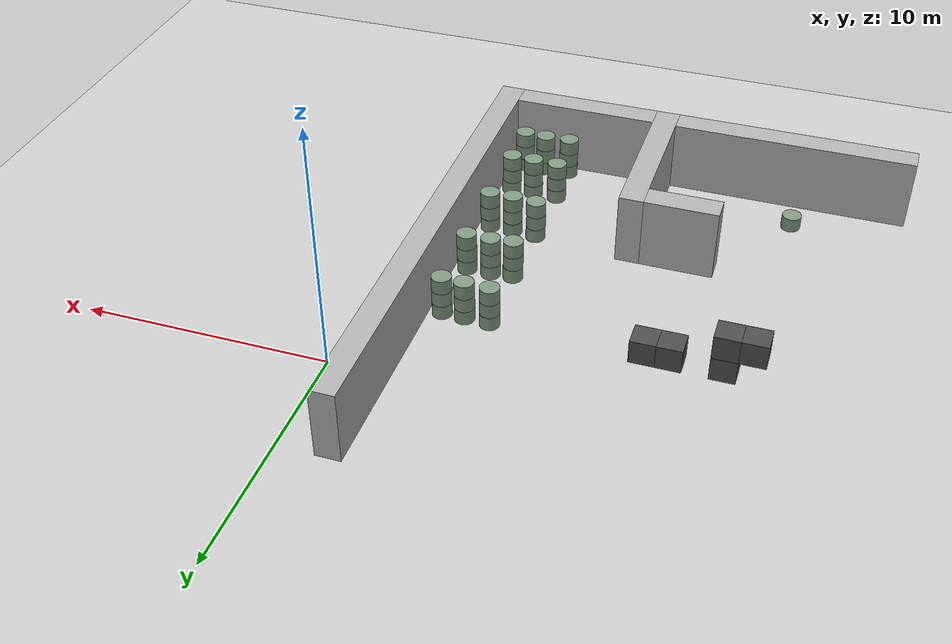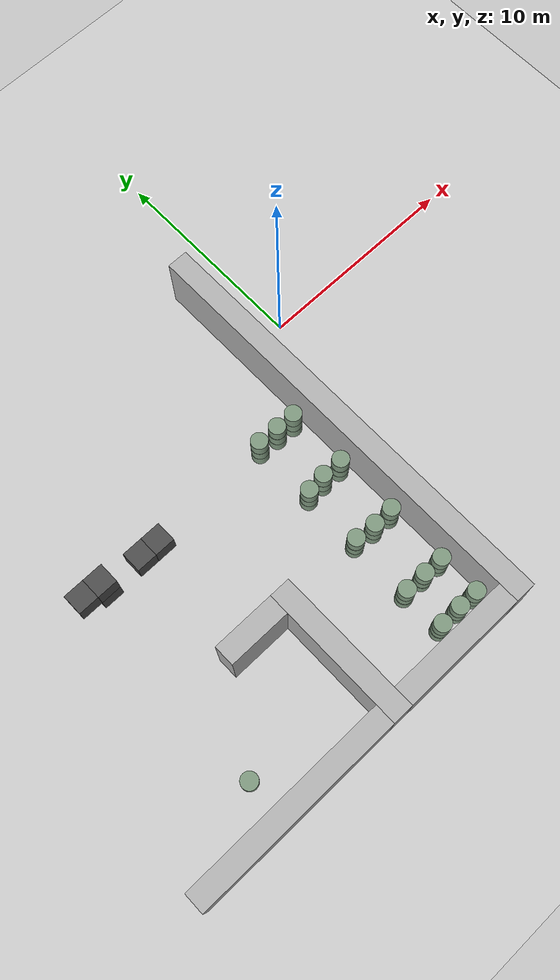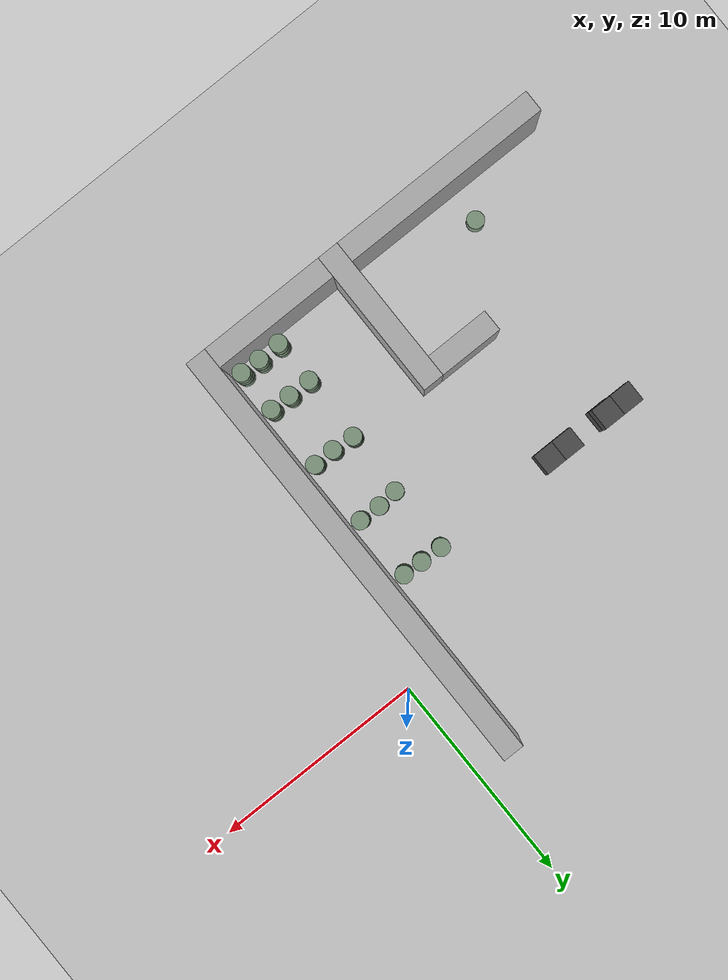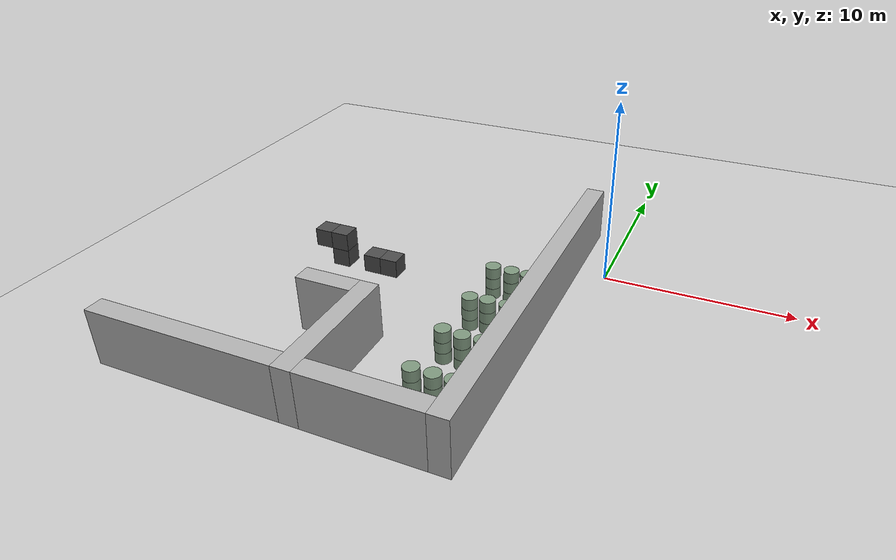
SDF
<sdf version="1.6">
 <world name="default">
  <include><uri>model://ground_plane</uri></include>
  <model name="wall_2">
   <pose>-9.0 -13.0 1.5 0 -0 0</pose>
   <static>True</static>
   <link name="link">
    <inertial>
     <mass>100</mass>
     <inertia>
      <ixx>0.166667</ixx>
      <ixy>0</ixy>
      <ixz>0</ixz>
      <iyy>0.166667</iyy>
      <iyz>0</iyz>
      <izz>0.166667</izz>
     </inertia>
    </inertial>
    <collision name="collision"><geometry><box><size>1.0 7.0 3.0</size></box></geometry></collision>
    <visual name="visual">
     <geometry><box><size>1.0 7.0 3.0</size></box></geometry>
     <material><ambient>0.7 0.7 0.7 1</ambient><diffuse>0.7 0.7 0.7 1</diffuse></material>
    </visual>
   </link>
  </model>
  <model name="wall_4">
   <pose>-2.0 -6.0 1.5 0 -0 0</pose>
   <static>True</static>
   <link name="link">
    <inertial>
     <mass>100</mass>
     <inertia>
      <ixx>0.166667</ixx>
      <ixy>0</ixy>
      <ixz>0</ixz>
      <iyy>0.166667</iyy>
      <iyz>0</iyz>
      <izz>0.166667</izz>
     </inertia>
    </inertial>
    <collision name="collision"><geometry><box><size>1.0 21.0 3.0</size></box></geometry></collision>
    <visual name="visual">
     <geometry><box><size>1.0 21.0 3.0</size></box></geometry>
     <material><ambient>0.7 0.7 0.7 1</ambient><diffuse>0.7 0.7 0.7 1</diffuse></material>
    </visual>
   </link>
  </model>
  <model name="wall_5">
   <pose>-14.5 -16.0 1.5 0 -0 0</pose>
   <static>True</static>
   <link name="link">
    <inertial>
     <mass>100</mass>
     <inertia>
      <ixx>0.166667</ixx>
      <ixy>0</ixy>
      <ixz>0</ixz>
      <iyy>0.166667</iyy>
      <iyz>0</iyz>
      <izz>0.166667</izz>
     </inertia>
    </inertial>
    <collision name="collision"><geometry><box><size>10.0 1.0 3.0</size></box></geometry></collision>
    <visual name="visual">
     <geometry><box><size>10.0 1.0 3.0</size></box></geometry>
     <material><ambient>0.7 0.7 0.7 1</ambient><diffuse>0.7 0.7 0.7 1</diffuse></material>
    </visual>
   </link>
  </model>
  <model name="wall_6">
   <pose>-5.5 -16.0 1.5 0 -0 0</pose>
   <static>True</static>
   <link name="link">
    <inertial>
     <mass>100</mass>
     <inertia>
      <ixx>0.166667</ixx>
      <ixy>0</ixy>
      <ixz>0</ixz>
      <iyy>0.166667</iyy>
      <iyz>0</iyz>
      <izz>0.166667</izz>
     </inertia>
    </inertial>
    <collision name="collision"><geometry><box><size>6.0 1.0 3.0</size></box></geometry></collision>
    <visual name="visual">
     <geometry><box><size>6.0 1.0 3.0</size></box></geometry>
     <material><ambient>0.7 0.7 0.7 1</ambient><diffuse>0.7 0.7 0.7 1</diffuse></material>
    </visual>
   </link>
  </model>
  <model name="wall_8">
   <pose>-11.0 -10.0 1.5 0 -0 0</pose>
   <static>True</static>
   <link name="link">
    <inertial>
     <mass>100</mass>
     <inertia>
      <ixx>0.166667</ixx>
      <ixy>0</ixy>
      <ixz>0</ixz>
      <iyy>0.166667</iyy>
      <iyz>0</iyz>
      <izz>0.166667</izz>
     </inertia>
    </inertial>
    <collision name="collision"><geometry><box><size>3.0 1.0 3.0</size></box></geometry></collision>
    <visual name="visual">
     <geometry><box><size>3.0 1.0 3.0</size></box></geometry>
     <material><ambient>0.7 0.7 0.7 1</ambient><diffuse>0.7 0.7 0.7 1</diffuse></material>
    </visual>
   </link>
  </model>
  <model name="unit_box_31">
   <pose>-15.0 -4.0 1.5 0 -0 0</pose>
   <static>True</static>
   <link name="link">
    <inertial>
     <mass>100</mass>
     <inertia>
      <ixx>0.166667</ixx>
      <ixy>0</ixy>
      <ixz>0</ixz>
      <iyy>0.166667</iyy>
      <iyz>0</iyz>
      <izz>0.166667</izz>
     </inertia>
    </inertial>
    <collision name="collision"><geometry><box><size>1.0 1.0 1.0</size></box></geometry></collision>
    <visual name="visual">
     <geometry><box><size>1.0 1.0 1.0</size></box></geometry>
     <material><ambient>0.3 0.3 0.3 1</ambient><diffuse>0.3 0.3 0.3 1</diffuse></material>
    </visual>
   </link>
  </model>
  <model name="unit_box_40">
   <pose>-14.0 -4.0 0.5 0 -0 0</pose>
   <static>True</static>
   <link name="link">
    <inertial>
     <mass>100</mass>
     <inertia>
      <ixx>0.166667</ixx>
      <ixy>0</ixy>
      <ixz>0</ixz>
      <iyy>0.166667</iyy>
      <iyz>0</iyz>
      <izz>0.166667</izz>
     </inertia>
    </inertial>
    <collision name="collision"><geometry><box><size>1.0 1.0 1.0</size></box></geometry></collision>
    <visual name="visual">
     <geometry><box><size>1.0 1.0 1.0</size></box></geometry>
     <material><ambient>0.3 0.3 0.3 1</ambient><diffuse>0.3 0.3 0.3 1</diffuse></material>
    </visual>
   </link>
  </model>
  <model name="unit_box_41">
   <pose>-14.0 -4.0 1.5 0 -0 0</pose>
   <static>True</static>
   <link name="link">
    <inertial>
     <mass>100</mass>
     <inertia>
      <ixx>0.166667</ixx>
      <ixy>0</ixy>
      <ixz>0</ixz>
      <iyy>0.166667</iyy>
      <iyz>0</iyz>
      <izz>0.166667</izz>
     </inertia>
    </inertial>
    <collision name="collision"><geometry><box><size>1.0 1.0 1.0</size></box></geometry></collision>
    <visual name="visual">
     <geometry><box><size>1.0 1.0 1.0</size></box></geometry>
     <material><ambient>0.3 0.3 0.3 1</ambient><diffuse>0.3 0.3 0.3 1</diffuse></material>
    </visual>
   </link>
  </model>
  <model name="unit_box_50">
   <pose>-12.0 -4.0 0.5 0 -0 0</pose>
   <static>True</static>
   <link name="link">
    <inertial>
     <mass>100</mass>
     <inertia>
      <ixx>0.166667</ixx>
      <ixy>0</ixy>
      <ixz>0</ixz>
      <iyy>0.166667</iyy>
      <iyz>0</iyz>
      <izz>0.166667</izz>
     </inertia>
    </inertial>
    <collision name="collision"><geometry><box><size>1.0 1.0 1.0</size></box></geometry></collision>
    <visual name="visual">
     <geometry><box><size>1.0 1.0 1.0</size></box></geometry>
     <material><ambient>0.3 0.3 0.3 1</ambient><diffuse>0.3 0.3 0.3 1</diffuse></material>
    </visual>
   </link>
  </model>
  <model name="unit_box_55">
   <pose>-11.0 -4.0 0.5 0 -0 0</pose>
   <static>True</static>
   <link name="link">
    <inertial>
     <mass>100</mass>
     <inertia>
      <ixx>0.166667</ixx>
      <ixy>0</ixy>
      <ixz>0</ixz>
      <iyy>0.166667</iyy>
      <iyz>0</iyz>
      <izz>0.166667</izz>
     </inertia>
    </inertial>
    <collision name="collision"><geometry><box><size>1.0 1.0 1.0</size></box></geometry></collision>
    <visual name="visual">
     <geometry><box><size>1.0 1.0 1.0</size></box></geometry>
     <material><ambient>0.3 0.3 0.3 1</ambient><diffuse>0.3 0.3 0.3 1</diffuse></material>
    </visual>
   </link>
  </model>
  <model name="unit_cylinder_40">
   <pose>-14.9763541599 -14.0039779979 0.3 0 -0 0</pose>
   <static>True</static>
   <link name="link">
    <inertial>
     <mass>100</mass>
     <inertia><ixx>0.145833</ixx><ixy>0</ixy><ixz>0</ixz><iyy>0.145833</iyy><iyz>0</iyz><izz>0.125</izz></inertia>
    </inertial>
    <collision name="collision">
     <geometry><cylinder><radius>0.4</radius><length>0.6</length></cylinder></geometry>
     <max_contacts>100</max_contacts>
    </collision>
    <visual name="visual">
     <geometry><cylinder><radius>0.4</radius><length>0.6</length></cylinder></geometry>
     <material><ambient>0.5 0.6 0.5 1</ambient><diffuse>0.5 0.6 0.5 1</diffuse></material>
    </visual>
   </link>
  </model>
  <model name="unit_cylinder_54">
   <pose>-5.00921092306 -14.9922750467 0.3 0 -0 0</pose>
   <static>True</static>
   <link name="link">
    <inertial>
     <mass>100</mass>
     <inertia><ixx>0.145833</ixx><ixy>0</ixy><ixz>0</ixz><iyy>0.145833</iyy><iyz>0</iyz><izz>0.125</izz></inertia>
    </inertial>
    <collision name="collision">
     <geometry><cylinder><radius>0.4</radius><length>0.6</length></cylinder></geometry>
     <max_contacts>100</max_contacts>
    </collision>
    <visual name="visual">
     <geometry><cylinder><radius>0.4</radius><length>0.6</length></cylinder></geometry>
     <material><ambient>0.5 0.6 0.5 1</ambient><diffuse>0.5 0.6 0.5 1</diffuse></material>
    </visual>
   </link>
  </model>
  <model name="unit_cylinder_55">
   <pose>-4.99778310944 -14.9755416685 0.9 0 -0 0</pose>
   <static>True</static>
   <link name="link">
    <inertial>
     <mass>100</mass>
     <inertia><ixx>0.145833</ixx><ixy>0</ixy><ixz>0</ixz><iyy>0.145833</iyy><iyz>0</iyz><izz>0.125</izz></inertia>
    </inertial>
    <collision name="collision">
     <geometry><cylinder><radius>0.4</radius><length>0.6</length></cylinder></geometry>
     <max_contacts>100</max_contacts>
    </collision>
    <visual name="visual">
     <geometry><cylinder><radius>0.4</radius><length>0.6</length></cylinder></geometry>
     <material><ambient>0.5 0.6 0.5 1</ambient><diffuse>0.5 0.6 0.5 1</diffuse></material>
    </visual>
   </link>
  </model>
  <model name="unit_cylinder_56">
   <pose>-5.00950720244 -14.9846965916 1.5 0 -0 0</pose>
   <static>True</static>
   <link name="link">
    <inertial>
     <mass>100</mass>
     <inertia><ixx>0.145833</ixx><ixy>0</ixy><ixz>0</ixz><iyy>0.145833</iyy><iyz>0</iyz><izz>0.125</izz></inertia>
    </inertial>
    <collision name="collision">
     <geometry><cylinder><radius>0.4</radius><length>0.6</length></cylinder></geometry>
     <max_contacts>100</max_contacts>
    </collision>
    <visual name="visual">
     <geometry><cylinder><radius>0.4</radius><length>0.6</length></cylinder></geometry>
     <material><ambient>0.5 0.6 0.5 1</ambient><diffuse>0.5 0.6 0.5 1</diffuse></material>
    </visual>
   </link>
  </model>
  <model name="unit_cylinder_57">
   <pose>-5.04824495338 -12.969737944 0.3 0 -0 0</pose>
   <static>True</static>
   <link name="link">
    <inertial>
     <mass>100</mass>
     <inertia><ixx>0.145833</ixx><ixy>0</ixy><ixz>0</ixz><iyy>0.145833</iyy><iyz>0</iyz><izz>0.125</izz></inertia>
    </inertial>
    <collision name="collision">
     <geometry><cylinder><radius>0.4</radius><length>0.6</length></cylinder></geometry>
     <max_contacts>100</max_contacts>
    </collision>
    <visual name="visual">
     <geometry><cylinder><radius>0.4</radius><length>0.6</length></cylinder></geometry>
     <material><ambient>0.5 0.6 0.5 1</ambient><diffuse>0.5 0.6 0.5 1</diffuse></material>
    </visual>
   </link>
  </model>
  <model name="unit_cylinder_58">
   <pose>-5.03633777549 -12.9618991564 0.9 0 -0 0</pose>
   <static>True</static>
   <link name="link">
    <inertial>
     <mass>100</mass>
     <inertia><ixx>0.145833</ixx><ixy>0</ixy><ixz>0</ixz><iyy>0.145833</iyy><iyz>0</iyz><izz>0.125</izz></inertia>
    </inertial>
    <collision name="collision">
     <geometry><cylinder><radius>0.4</radius><length>0.6</length></cylinder></geometry>
     <max_contacts>100</max_contacts>
    </collision>
    <visual name="visual">
     <geometry><cylinder><radius>0.4</radius><length>0.6</length></cylinder></geometry>
     <material><ambient>0.5 0.6 0.5 1</ambient><diffuse>0.5 0.6 0.5 1</diffuse></material>
    </visual>
   </link>
  </model>
  <model name="unit_cylinder_59">
   <pose>-5.04140824016 -12.9633216501 1.5 0 -0 0</pose>
   <static>True</static>
   <link name="link">
    <inertial>
     <mass>100</mass>
     <inertia><ixx>0.145833</ixx><ixy>0</ixy><ixz>0</ixz><iyy>0.145833</iyy><iyz>0</iyz><izz>0.125</izz></inertia>
    </inertial>
    <collision name="collision">
     <geometry><cylinder><radius>0.4</radius><length>0.6</length></cylinder></geometry>
     <max_contacts>100</max_contacts>
    </collision>
    <visual name="visual">
     <geometry><cylinder><radius>0.4</radius><length>0.6</length></cylinder></geometry>
     <material><ambient>0.5 0.6 0.5 1</ambient><diffuse>0.5 0.6 0.5 1</diffuse></material>
    </visual>
   </link>
  </model>
  <model name="unit_cylinder_60">
   <pose>-5.00932272516 -9.94224104226 0.3 0 -0 0</pose>
   <static>True</static>
   <link name="link">
    <inertial>
     <mass>100</mass>
     <inertia><ixx>0.145833</ixx><ixy>0</ixy><ixz>0</ixz><iyy>0.145833</iyy><iyz>0</iyz><izz>0.125</izz></inertia>
    </inertial>
    <collision name="collision">
     <geometry><cylinder><radius>0.4</radius><length>0.6</length></cylinder></geometry>
     <max_contacts>100</max_contacts>
    </collision>
    <visual name="visual">
     <geometry><cylinder><radius>0.4</radius><length>0.6</length></cylinder></geometry>
     <material><ambient>0.5 0.6 0.5 1</ambient><diffuse>0.5 0.6 0.5 1</diffuse></material>
    </visual>
   </link>
  </model>
  <model name="unit_cylinder_61">
   <pose>-5.02406625147 -9.9564383121 0.9 0 -0 0</pose>
   <static>True</static>
   <link name="link">
    <inertial>
     <mass>100</mass>
     <inertia><ixx>0.145833</ixx><ixy>0</ixy><ixz>0</ixz><iyy>0.145833</iyy><iyz>0</iyz><izz>0.125</izz></inertia>
    </inertial>
    <collision name="collision">
     <geometry><cylinder><radius>0.4</radius><length>0.6</length></cylinder></geometry>
     <max_contacts>100</max_contacts>
    </collision>
    <visual name="visual">
     <geometry><cylinder><radius>0.4</radius><length>0.6</length></cylinder></geometry>
     <material><ambient>0.5 0.6 0.5 1</ambient><diffuse>0.5 0.6 0.5 1</diffuse></material>
    </visual>
   </link>
  </model>
  <model name="unit_cylinder_62">
   <pose>-5.00924745538 -9.95126444267 1.5 0 -0 0</pose>
   <static>True</static>
   <link name="link">
    <inertial>
     <mass>100</mass>
     <inertia><ixx>0.145833</ixx><ixy>0</ixy><ixz>0</ixz><iyy>0.145833</iyy><iyz>0</iyz><izz>0.125</izz></inertia>
    </inertial>
    <collision name="collision">
     <geometry><cylinder><radius>0.4</radius><length>0.6</length></cylinder></geometry>
     <max_contacts>100</max_contacts>
    </collision>
    <visual name="visual">
     <geometry><cylinder><radius>0.4</radius><length>0.6</length></cylinder></geometry>
     <material><ambient>0.5 0.6 0.5 1</ambient><diffuse>0.5 0.6 0.5 1</diffuse></material>
    </visual>
   </link>
  </model>
  <model name="unit_cylinder_63">
   <pose>-4.94908651332 -7.03726353755 0.3 0 -0 0</pose>
   <static>True</static>
   <link name="link">
    <inertial>
     <mass>100</mass>
     <inertia><ixx>0.145833</ixx><ixy>0</ixy><ixz>0</ixz><iyy>0.145833</iyy><iyz>0</iyz><izz>0.125</izz></inertia>
    </inertial>
    <collision name="collision">
     <geometry><cylinder><radius>0.4</radius><length>0.6</length></cylinder></geometry>
     <max_contacts>100</max_contacts>
    </collision>
    <visual name="visual">
     <geometry><cylinder><radius>0.4</radius><length>0.6</length></cylinder></geometry>
     <material><ambient>0.5 0.6 0.5 1</ambient><diffuse>0.5 0.6 0.5 1</diffuse></material>
    </visual>
   </link>
  </model>
  <model name="unit_cylinder_64">
   <pose>-4.94931587333 -7.0487035002 0.9 0 -0 0</pose>
   <static>True</static>
   <link name="link">
    <inertial>
     <mass>100</mass>
     <inertia><ixx>0.145833</ixx><ixy>0</ixy><ixz>0</ixz><iyy>0.145833</iyy><iyz>0</iyz><izz>0.125</izz></inertia>
    </inertial>
    <collision name="collision">
     <geometry><cylinder><radius>0.4</radius><length>0.6</length></cylinder></geometry>
     <max_contacts>100</max_contacts>
    </collision>
    <visual name="visual">
     <geometry><cylinder><radius>0.4</radius><length>0.6</length></cylinder></geometry>
     <material><ambient>0.5 0.6 0.5 1</ambient><diffuse>0.5 0.6 0.5 1</diffuse></material>
    </visual>
   </link>
  </model>
  <model name="unit_cylinder_65">
   <pose>-4.94812632937 -7.04876677766 1.5 0 -0 0</pose>
   <static>True</static>
   <link name="link">
    <inertial>
     <mass>100</mass>
     <inertia><ixx>0.145833</ixx><ixy>0</ixy><ixz>0</ixz><iyy>0.145833</iyy><iyz>0</iyz><izz>0.125</izz></inertia>
    </inertial>
    <collision name="collision">
     <geometry><cylinder><radius>0.4</radius><length>0.6</length></cylinder></geometry>
     <max_contacts>100</max_contacts>
    </collision>
    <visual name="visual">
     <geometry><cylinder><radius>0.4</radius><length>0.6</length></cylinder></geometry>
     <material><ambient>0.5 0.6 0.5 1</ambient><diffuse>0.5 0.6 0.5 1</diffuse></material>
    </visual>
   </link>
  </model>
  <model name="unit_cylinder_66">
   <pose>-4.98372278232 -3.97250482977 0.3 0 -0 0</pose>
   <static>True</static>
   <link name="link">
    <inertial>
     <mass>100</mass>
     <inertia><ixx>0.145833</ixx><ixy>0</ixy><ixz>0</ixz><iyy>0.145833</iyy><iyz>0</iyz><izz>0.125</izz></inertia>
    </inertial>
    <collision name="collision">
     <geometry><cylinder><radius>0.4</radius><length>0.6</length></cylinder></geometry>
     <max_contacts>100</max_contacts>
    </collision>
    <visual name="visual">
     <geometry><cylinder><radius>0.4</radius><length>0.6</length></cylinder></geometry>
     <material><ambient>0.5 0.6 0.5 1</ambient><diffuse>0.5 0.6 0.5 1</diffuse></material>
    </visual>
   </link>
  </model>
  <model name="unit_cylinder_67">
   <pose>-4.98593946183 -3.97732042238 0.9 0 -0 0</pose>
   <static>True</static>
   <link name="link">
    <inertial>
     <mass>100</mass>
     <inertia><ixx>0.145833</ixx><ixy>0</ixy><ixz>0</ixz><iyy>0.145833</iyy><iyz>0</iyz><izz>0.125</izz></inertia>
    </inertial>
    <collision name="collision">
     <geometry><cylinder><radius>0.4</radius><length>0.6</length></cylinder></geometry>
     <max_contacts>100</max_contacts>
    </collision>
    <visual name="visual">
     <geometry><cylinder><radius>0.4</radius><length>0.6</length></cylinder></geometry>
     <material><ambient>0.5 0.6 0.5 1</ambient><diffuse>0.5 0.6 0.5 1</diffuse></material>
    </visual>
   </link>
  </model>
  <model name="unit_cylinder_68">
   <pose>-4.9863197627 -3.96942350339 1.5 0 -0 0</pose>
   <static>True</static>
   <link name="link">
    <inertial>
     <mass>100</mass>
     <inertia><ixx>0.145833</ixx><ixy>0</ixy><ixz>0</ixz><iyy>0.145833</iyy><iyz>0</iyz><izz>0.125</izz></inertia>
    </inertial>
    <collision name="collision">
     <geometry><cylinder><radius>0.4</radius><length>0.6</length></cylinder></geometry>
     <max_contacts>100</max_contacts>
    </collision>
    <visual name="visual">
     <geometry><cylinder><radius>0.4</radius><length>0.6</length></cylinder></geometry>
     <material><ambient>0.5 0.6 0.5 1</ambient><diffuse>0.5 0.6 0.5 1</diffuse></material>
    </visual>
   </link>
  </model>
  <model name="unit_cylinder_96">
   <pose>-3.95040286666 -14.9591318792 0.3 0 -0 0</pose>
   <static>True</static>
   <link name="link">
    <inertial>
     <mass>100</mass>
     <inertia><ixx>0.145833</ixx><ixy>0</ixy><ixz>0</ixz><iyy>0.145833</iyy><iyz>0</iyz><izz>0.125</izz></inertia>
    </inertial>
    <collision name="collision">
     <geometry><cylinder><radius>0.4</radius><length>0.6</length></cylinder></geometry>
     <max_contacts>100</max_contacts>
    </collision>
    <visual name="visual">
     <geometry><cylinder><radius>0.4</radius><length>0.6</length></cylinder></geometry>
     <material><ambient>0.5 0.6 0.5 1</ambient><diffuse>0.5 0.6 0.5 1</diffuse></material>
    </visual>
   </link>
  </model>
  <model name="unit_cylinder_97">
   <pose>-3.95172016169 -14.9592469098 0.9 0 -0 0</pose>
   <static>True</static>
   <link name="link">
    <inertial>
     <mass>100</mass>
     <inertia><ixx>0.145833</ixx><ixy>0</ixy><ixz>0</ixz><iyy>0.145833</iyy><iyz>0</iyz><izz>0.125</izz></inertia>
    </inertial>
    <collision name="collision">
     <geometry><cylinder><radius>0.4</radius><length>0.6</length></cylinder></geometry>
     <max_contacts>100</max_contacts>
    </collision>
    <visual name="visual">
     <geometry><cylinder><radius>0.4</radius><length>0.6</length></cylinder></geometry>
     <material><ambient>0.5 0.6 0.5 1</ambient><diffuse>0.5 0.6 0.5 1</diffuse></material>
    </visual>
   </link>
  </model>
  <model name="unit_cylinder_98">
   <pose>-3.95370553888 -14.9688130033 1.5 0 -0 0</pose>
   <static>True</static>
   <link name="link">
    <inertial>
     <mass>100</mass>
     <inertia><ixx>0.145833</ixx><ixy>0</ixy><ixz>0</ixz><iyy>0.145833</iyy><iyz>0</iyz><izz>0.125</izz></inertia>
    </inertial>
    <collision name="collision">
     <geometry><cylinder><radius>0.4</radius><length>0.6</length></cylinder></geometry>
     <max_contacts>100</max_contacts>
    </collision>
    <visual name="visual">
     <geometry><cylinder><radius>0.4</radius><length>0.6</length></cylinder></geometry>
     <material><ambient>0.5 0.6 0.5 1</ambient><diffuse>0.5 0.6 0.5 1</diffuse></material>
    </visual>
   </link>
  </model>
  <model name="unit_cylinder_99">
   <pose>-4.00394758843 -12.9892273169 0.3 0 -0 0</pose>
   <static>True</static>
   <link name="link">
    <inertial>
     <mass>100</mass>
     <inertia><ixx>0.145833</ixx><ixy>0</ixy><ixz>0</ixz><iyy>0.145833</iyy><iyz>0</iyz><izz>0.125</izz></inertia>
    </inertial>
    <collision name="collision">
     <geometry><cylinder><radius>0.4</radius><length>0.6</length></cylinder></geometry>
     <max_contacts>100</max_contacts>
    </collision>
    <visual name="visual">
     <geometry><cylinder><radius>0.4</radius><length>0.6</length></cylinder></geometry>
     <material><ambient>0.5 0.6 0.5 1</ambient><diffuse>0.5 0.6 0.5 1</diffuse></material>
    </visual>
   </link>
  </model>
  <model name="unit_cylinder_100">
   <pose>-3.99201920196 -12.9904538686 0.9 0 -0 0</pose>
   <static>True</static>
   <link name="link">
    <inertial>
     <mass>100</mass>
     <inertia><ixx>0.145833</ixx><ixy>0</ixy><ixz>0</ixz><iyy>0.145833</iyy><iyz>0</iyz><izz>0.125</izz></inertia>
    </inertial>
    <collision name="collision">
     <geometry><cylinder><radius>0.4</radius><length>0.6</length></cylinder></geometry>
     <max_contacts>100</max_contacts>
    </collision>
    <visual name="visual">
     <geometry><cylinder><radius>0.4</radius><length>0.6</length></cylinder></geometry>
     <material><ambient>0.5 0.6 0.5 1</ambient><diffuse>0.5 0.6 0.5 1</diffuse></material>
    </visual>
   </link>
  </model>
  <model name="unit_cylinder_101">
   <pose>-3.99146774416 -12.9828771531 1.5 0 -0 0</pose>
   <static>True</static>
   <link name="link">
    <inertial>
     <mass>100</mass>
     <inertia><ixx>0.145833</ixx><ixy>0</ixy><ixz>0</ixz><iyy>0.145833</iyy><iyz>0</iyz><izz>0.125</izz></inertia>
    </inertial>
    <collision name="collision">
     <geometry><cylinder><radius>0.4</radius><length>0.6</length></cylinder></geometry>
     <max_contacts>100</max_contacts>
    </collision>
    <visual name="visual">
     <geometry><cylinder><radius>0.4</radius><length>0.6</length></cylinder></geometry>
     <material><ambient>0.5 0.6 0.5 1</ambient><diffuse>0.5 0.6 0.5 1</diffuse></material>
    </visual>
   </link>
  </model>
  <model name="unit_cylinder_102">
   <pose>-3.99315205062 -10.0287865042 0.3 0 -0 0</pose>
   <static>True</static>
   <link name="link">
    <inertial>
     <mass>100</mass>
     <inertia><ixx>0.145833</ixx><ixy>0</ixy><ixz>0</ixz><iyy>0.145833</iyy><iyz>0</iyz><izz>0.125</izz></inertia>
    </inertial>
    <collision name="collision">
     <geometry><cylinder><radius>0.4</radius><length>0.6</length></cylinder></geometry>
     <max_contacts>100</max_contacts>
    </collision>
    <visual name="visual">
     <geometry><cylinder><radius>0.4</radius><length>0.6</length></cylinder></geometry>
     <material><ambient>0.5 0.6 0.5 1</ambient><diffuse>0.5 0.6 0.5 1</diffuse></material>
    </visual>
   </link>
  </model>
  <model name="unit_cylinder_103">
   <pose>-3.98268586779 -10.0465916437 0.9 0 -0 0</pose>
   <static>True</static>
   <link name="link">
    <inertial>
     <mass>100</mass>
     <inertia><ixx>0.145833</ixx><ixy>0</ixy><ixz>0</ixz><iyy>0.145833</iyy><iyz>0</iyz><izz>0.125</izz></inertia>
    </inertial>
    <collision name="collision">
     <geometry><cylinder><radius>0.4</radius><length>0.6</length></cylinder></geometry>
     <max_contacts>100</max_contacts>
    </collision>
    <visual name="visual">
     <geometry><cylinder><radius>0.4</radius><length>0.6</length></cylinder></geometry>
     <material><ambient>0.5 0.6 0.5 1</ambient><diffuse>0.5 0.6 0.5 1</diffuse></material>
    </visual>
   </link>
  </model>
  <model name="unit_cylinder_104">
   <pose>-3.99053016172 -10.0406893156 1.5 0 -0 0</pose>
   <static>True</static>
   <link name="link">
    <inertial>
     <mass>100</mass>
     <inertia><ixx>0.145833</ixx><ixy>0</ixy><ixz>0</ixz><iyy>0.145833</iyy><iyz>0</iyz><izz>0.125</izz></inertia>
    </inertial>
    <collision name="collision">
     <geometry><cylinder><radius>0.4</radius><length>0.6</length></cylinder></geometry>
     <max_contacts>100</max_contacts>
    </collision>
    <visual name="visual">
     <geometry><cylinder><radius>0.4</radius><length>0.6</length></cylinder></geometry>
     <material><ambient>0.5 0.6 0.5 1</ambient><diffuse>0.5 0.6 0.5 1</diffuse></material>
    </visual>
   </link>
  </model>
  <model name="unit_cylinder_105">
   <pose>-4.03610390271 -6.96576111977 0.3 0 -0 0</pose>
   <static>True</static>
   <link name="link">
    <inertial>
     <mass>100</mass>
     <inertia><ixx>0.145833</ixx><ixy>0</ixy><ixz>0</ixz><iyy>0.145833</iyy><iyz>0</iyz><izz>0.125</izz></inertia>
    </inertial>
    <collision name="collision">
     <geometry><cylinder><radius>0.4</radius><length>0.6</length></cylinder></geometry>
     <max_contacts>100</max_contacts>
    </collision>
    <visual name="visual">
     <geometry><cylinder><radius>0.4</radius><length>0.6</length></cylinder></geometry>
     <material><ambient>0.5 0.6 0.5 1</ambient><diffuse>0.5 0.6 0.5 1</diffuse></material>
    </visual>
   </link>
  </model>
  <model name="unit_cylinder_106">
   <pose>-4.03748591853 -6.96704959129 0.9 0 -0 0</pose>
   <static>True</static>
   <link name="link">
    <inertial>
     <mass>100</mass>
     <inertia><ixx>0.145833</ixx><ixy>0</ixy><ixz>0</ixz><iyy>0.145833</iyy><iyz>0</iyz><izz>0.125</izz></inertia>
    </inertial>
    <collision name="collision">
     <geometry><cylinder><radius>0.4</radius><length>0.6</length></cylinder></geometry>
     <max_contacts>100</max_contacts>
    </collision>
    <visual name="visual">
     <geometry><cylinder><radius>0.4</radius><length>0.6</length></cylinder></geometry>
     <material><ambient>0.5 0.6 0.5 1</ambient><diffuse>0.5 0.6 0.5 1</diffuse></material>
    </visual>
   </link>
  </model>
  <model name="unit_cylinder_107">
   <pose>-4.03488139326 -6.96546634955 1.5 0 -0 0</pose>
   <static>True</static>
   <link name="link">
    <inertial>
     <mass>100</mass>
     <inertia><ixx>0.145833</ixx><ixy>0</ixy><ixz>0</ixz><iyy>0.145833</iyy><iyz>0</iyz><izz>0.125</izz></inertia>
    </inertial>
    <collision name="collision">
     <geometry><cylinder><radius>0.4</radius><length>0.6</length></cylinder></geometry>
     <max_contacts>100</max_contacts>
    </collision>
    <visual name="visual">
     <geometry><cylinder><radius>0.4</radius><length>0.6</length></cylinder></geometry>
     <material><ambient>0.5 0.6 0.5 1</ambient><diffuse>0.5 0.6 0.5 1</diffuse></material>
    </visual>
   </link>
  </model>
  <model name="unit_cylinder_108">
   <pose>-3.9688465805 -4.00685970517 0.3 0 -0 0</pose>
   <static>True</static>
   <link name="link">
    <inertial>
     <mass>100</mass>
     <inertia><ixx>0.145833</ixx><ixy>0</ixy><ixz>0</ixz><iyy>0.145833</iyy><iyz>0</iyz><izz>0.125</izz></inertia>
    </inertial>
    <collision name="collision">
     <geometry><cylinder><radius>0.4</radius><length>0.6</length></cylinder></geometry>
     <max_contacts>100</max_contacts>
    </collision>
    <visual name="visual">
     <geometry><cylinder><radius>0.4</radius><length>0.6</length></cylinder></geometry>
     <material><ambient>0.5 0.6 0.5 1</ambient><diffuse>0.5 0.6 0.5 1</diffuse></material>
    </visual>
   </link>
  </model>
  <model name="unit_cylinder_109">
   <pose>-3.96665791353 -4.00804987411 0.9 0 -0 0</pose>
   <static>True</static>
   <link name="link">
    <inertial>
     <mass>100</mass>
     <inertia><ixx>0.145833</ixx><ixy>0</ixy><ixz>0</ixz><iyy>0.145833</iyy><iyz>0</iyz><izz>0.125</izz></inertia>
    </inertial>
    <collision name="collision">
     <geometry><cylinder><radius>0.4</radius><length>0.6</length></cylinder></geometry>
     <max_contacts>100</max_contacts>
    </collision>
    <visual name="visual">
     <geometry><cylinder><radius>0.4</radius><length>0.6</length></cylinder></geometry>
     <material><ambient>0.5 0.6 0.5 1</ambient><diffuse>0.5 0.6 0.5 1</diffuse></material>
    </visual>
   </link>
  </model>
  <model name="unit_cylinder_110">
   <pose>-3.95655191073 -4.00409932653 1.5 0 -0 0</pose>
   <static>True</static>
   <link name="link">
    <inertial>
     <mass>100</mass>
     <inertia><ixx>0.145833</ixx><ixy>0</ixy><ixz>0</ixz><iyy>0.145833</iyy><iyz>0</iyz><izz>0.125</izz></inertia>
    </inertial>
    <collision name="collision">
     <geometry><cylinder><radius>0.4</radius><length>0.6</length></cylinder></geometry>
     <max_contacts>100</max_contacts>
    </collision>
    <visual name="visual">
     <geometry><cylinder><radius>0.4</radius><length>0.6</length></cylinder></geometry>
     <material><ambient>0.5 0.6 0.5 1</ambient><diffuse>0.5 0.6 0.5 1</diffuse></material>
    </visual>
   </link>
  </model>
  <model name="unit_cylinder_138">
   <pose>-3.00985498538 -14.9815796268 0.3 0 -0 0</pose>
   <static>True</static>
   <link name="link">
    <inertial>
     <mass>100</mass>
     <inertia><ixx>0.145833</ixx><ixy>0</ixy><ixz>0</ixz><iyy>0.145833</iyy><iyz>0</iyz><izz>0.125</izz></inertia>
    </inertial>
    <collision name="collision">
     <geometry><cylinder><radius>0.4</radius><length>0.6</length></cylinder></geometry>
     <max_contacts>100</max_contacts>
    </collision>
    <visual name="visual">
     <geometry><cylinder><radius>0.4</radius><length>0.6</length></cylinder></geometry>
     <material><ambient>0.5 0.6 0.5 1</ambient><diffuse>0.5 0.6 0.5 1</diffuse></material>
    </visual>
   </link>
  </model>
  <model name="unit_cylinder_139">
   <pose>-3.00240791509 -14.9994234731 0.9 0 -0 0</pose>
   <static>True</static>
   <link name="link">
    <inertial>
     <mass>100</mass>
     <inertia><ixx>0.145833</ixx><ixy>0</ixy><ixz>0</ixz><iyy>0.145833</iyy><iyz>0</iyz><izz>0.125</izz></inertia>
    </inertial>
    <collision name="collision">
     <geometry><cylinder><radius>0.4</radius><length>0.6</length></cylinder></geometry>
     <max_contacts>100</max_contacts>
    </collision>
    <visual name="visual">
     <geometry><cylinder><radius>0.4</radius><length>0.6</length></cylinder></geometry>
     <material><ambient>0.5 0.6 0.5 1</ambient><diffuse>0.5 0.6 0.5 1</diffuse></material>
    </visual>
   </link>
  </model>
  <model name="unit_cylinder_140">
   <pose>-3.01309051384 -14.9959069571 1.5 0 -0 0</pose>
   <static>True</static>
   <link name="link">
    <inertial>
     <mass>100</mass>
     <inertia><ixx>0.145833</ixx><ixy>0</ixy><ixz>0</ixz><iyy>0.145833</iyy><iyz>0</iyz><izz>0.125</izz></inertia>
    </inertial>
    <collision name="collision">
     <geometry><cylinder><radius>0.4</radius><length>0.6</length></cylinder></geometry>
     <max_contacts>100</max_contacts>
    </collision>
    <visual name="visual">
     <geometry><cylinder><radius>0.4</radius><length>0.6</length></cylinder></geometry>
     <material><ambient>0.5 0.6 0.5 1</ambient><diffuse>0.5 0.6 0.5 1</diffuse></material>
    </visual>
   </link>
  </model>
  <model name="unit_cylinder_141">
   <pose>-3.02223069877 -13.0071148419 0.3 0 -0 0</pose>
   <static>True</static>
   <link name="link">
    <inertial>
     <mass>100</mass>
     <inertia><ixx>0.145833</ixx><ixy>0</ixy><ixz>0</ixz><iyy>0.145833</iyy><iyz>0</iyz><izz>0.125</izz></inertia>
    </inertial>
    <collision name="collision">
     <geometry><cylinder><radius>0.4</radius><length>0.6</length></cylinder></geometry>
     <max_contacts>100</max_contacts>
    </collision>
    <visual name="visual">
     <geometry><cylinder><radius>0.4</radius><length>0.6</length></cylinder></geometry>
     <material><ambient>0.5 0.6 0.5 1</ambient><diffuse>0.5 0.6 0.5 1</diffuse></material>
    </visual>
   </link>
  </model>
  <model name="unit_cylinder_142">
   <pose>-3.03799481136 -12.9897798064 0.9 0 -0 0</pose>
   <static>True</static>
   <link name="link">
    <inertial>
     <mass>100</mass>
     <inertia><ixx>0.145833</ixx><ixy>0</ixy><ixz>0</ixz><iyy>0.145833</iyy><iyz>0</iyz><izz>0.125</izz></inertia>
    </inertial>
    <collision name="collision">
     <geometry><cylinder><radius>0.4</radius><length>0.6</length></cylinder></geometry>
     <max_contacts>100</max_contacts>
    </collision>
    <visual name="visual">
     <geometry><cylinder><radius>0.4</radius><length>0.6</length></cylinder></geometry>
     <material><ambient>0.5 0.6 0.5 1</ambient><diffuse>0.5 0.6 0.5 1</diffuse></material>
    </visual>
   </link>
  </model>
  <model name="unit_cylinder_143">
   <pose>-3.02889724832 -13.0047689257 1.5 0 -0 0</pose>
   <static>True</static>
   <link name="link">
    <inertial>
     <mass>100</mass>
     <inertia><ixx>0.145833</ixx><ixy>0</ixy><ixz>0</ixz><iyy>0.145833</iyy><iyz>0</iyz><izz>0.125</izz></inertia>
    </inertial>
    <collision name="collision">
     <geometry><cylinder><radius>0.4</radius><length>0.6</length></cylinder></geometry>
     <max_contacts>100</max_contacts>
    </collision>
    <visual name="visual">
     <geometry><cylinder><radius>0.4</radius><length>0.6</length></cylinder></geometry>
     <material><ambient>0.5 0.6 0.5 1</ambient><diffuse>0.5 0.6 0.5 1</diffuse></material>
    </visual>
   </link>
  </model>
  <model name="unit_cylinder_144">
   <pose>-3.00755625828 -10.0412396409 0.3 0 -0 0</pose>
   <static>True</static>
   <link name="link">
    <inertial>
     <mass>100</mass>
     <inertia><ixx>0.145833</ixx><ixy>0</ixy><ixz>0</ixz><iyy>0.145833</iyy><iyz>0</iyz><izz>0.125</izz></inertia>
    </inertial>
    <collision name="collision">
     <geometry><cylinder><radius>0.4</radius><length>0.6</length></cylinder></geometry>
     <max_contacts>100</max_contacts>
    </collision>
    <visual name="visual">
     <geometry><cylinder><radius>0.4</radius><length>0.6</length></cylinder></geometry>
     <material><ambient>0.5 0.6 0.5 1</ambient><diffuse>0.5 0.6 0.5 1</diffuse></material>
    </visual>
   </link>
  </model>
  <model name="unit_cylinder_145">
   <pose>-3.01293310953 -10.0267432623 0.9 0 -0 0</pose>
   <static>True</static>
   <link name="link">
    <inertial>
     <mass>100</mass>
     <inertia><ixx>0.145833</ixx><ixy>0</ixy><ixz>0</ixz><iyy>0.145833</iyy><iyz>0</iyz><izz>0.125</izz></inertia>
    </inertial>
    <collision name="collision">
     <geometry><cylinder><radius>0.4</radius><length>0.6</length></cylinder></geometry>
     <max_contacts>100</max_contacts>
    </collision>
    <visual name="visual">
     <geometry><cylinder><radius>0.4</radius><length>0.6</length></cylinder></geometry>
     <material><ambient>0.5 0.6 0.5 1</ambient><diffuse>0.5 0.6 0.5 1</diffuse></material>
    </visual>
   </link>
  </model>
  <model name="unit_cylinder_146">
   <pose>-3.00298903484 -10.0288524837 1.5 0 -0 0</pose>
   <static>True</static>
   <link name="link">
    <inertial>
     <mass>100</mass>
     <inertia><ixx>0.145833</ixx><ixy>0</ixy><ixz>0</ixz><iyy>0.145833</iyy><iyz>0</iyz><izz>0.125</izz></inertia>
    </inertial>
    <collision name="collision">
     <geometry><cylinder><radius>0.4</radius><length>0.6</length></cylinder></geometry>
     <max_contacts>100</max_contacts>
    </collision>
    <visual name="visual">
     <geometry><cylinder><radius>0.4</radius><length>0.6</length></cylinder></geometry>
     <material><ambient>0.5 0.6 0.5 1</ambient><diffuse>0.5 0.6 0.5 1</diffuse></material>
    </visual>
   </link>
  </model>
  <model name="unit_cylinder_147">
   <pose>-3.039802088 -6.99311760083 0.3 0 -0 0</pose>
   <static>True</static>
   <link name="link">
    <inertial>
     <mass>100</mass>
     <inertia><ixx>0.145833</ixx><ixy>0</ixy><ixz>0</ixz><iyy>0.145833</iyy><iyz>0</iyz><izz>0.125</izz></inertia>
    </inertial>
    <collision name="collision">
     <geometry><cylinder><radius>0.4</radius><length>0.6</length></cylinder></geometry>
     <max_contacts>100</max_contacts>
    </collision>
    <visual name="visual">
     <geometry><cylinder><radius>0.4</radius><length>0.6</length></cylinder></geometry>
     <material><ambient>0.5 0.6 0.5 1</ambient><diffuse>0.5 0.6 0.5 1</diffuse></material>
    </visual>
   </link>
  </model>
  <model name="unit_cylinder_148">
   <pose>-3.03362903143 -7.00035338324 0.9 0 -0 0</pose>
   <static>True</static>
   <link name="link">
    <inertial>
     <mass>100</mass>
     <inertia><ixx>0.145833</ixx><ixy>0</ixy><ixz>0</ixz><iyy>0.145833</iyy><iyz>0</iyz><izz>0.125</izz></inertia>
    </inertial>
    <collision name="collision">
     <geometry><cylinder><radius>0.4</radius><length>0.6</length></cylinder></geometry>
     <max_contacts>100</max_contacts>
    </collision>
    <visual name="visual">
     <geometry><cylinder><radius>0.4</radius><length>0.6</length></cylinder></geometry>
     <material><ambient>0.5 0.6 0.5 1</ambient><diffuse>0.5 0.6 0.5 1</diffuse></material>
    </visual>
   </link>
  </model>
  <model name="unit_cylinder_149">
   <pose>-3.02451831279 -6.98837323529 1.5 0 -0 0</pose>
   <static>True</static>
   <link name="link">
    <inertial>
     <mass>100</mass>
     <inertia><ixx>0.145833</ixx><ixy>0</ixy><ixz>0</ixz><iyy>0.145833</iyy><iyz>0</iyz><izz>0.125</izz></inertia>
    </inertial>
    <collision name="collision">
     <geometry><cylinder><radius>0.4</radius><length>0.6</length></cylinder></geometry>
     <max_contacts>100</max_contacts>
    </collision>
    <visual name="visual">
     <geometry><cylinder><radius>0.4</radius><length>0.6</length></cylinder></geometry>
     <material><ambient>0.5 0.6 0.5 1</ambient><diffuse>0.5 0.6 0.5 1</diffuse></material>
    </visual>
   </link>
  </model>
  <model name="unit_cylinder_150">
   <pose>-3.0422696191 -4.04619553065 0.3 0 -0 0</pose>
   <static>True</static>
   <link name="link">
    <inertial>
     <mass>100</mass>
     <inertia><ixx>0.145833</ixx><ixy>0</ixy><ixz>0</ixz><iyy>0.145833</iyy><iyz>0</iyz><izz>0.125</izz></inertia>
    </inertial>
    <collision name="collision">
     <geometry><cylinder><radius>0.4</radius><length>0.6</length></cylinder></geometry>
     <max_contacts>100</max_contacts>
    </collision>
    <visual name="visual">
     <geometry><cylinder><radius>0.4</radius><length>0.6</length></cylinder></geometry>
     <material><ambient>0.5 0.6 0.5 1</ambient><diffuse>0.5 0.6 0.5 1</diffuse></material>
    </visual>
   </link>
  </model>
  <model name="unit_cylinder_151">
   <pose>-3.04042476008 -4.04343916646 0.9 0 -0 0</pose>
   <static>True</static>
   <link name="link">
    <inertial>
     <mass>100</mass>
     <inertia><ixx>0.145833</ixx><ixy>0</ixy><ixz>0</ixz><iyy>0.145833</iyy><iyz>0</iyz><izz>0.125</izz></inertia>
    </inertial>
    <collision name="collision">
     <geometry><cylinder><radius>0.4</radius><length>0.6</length></cylinder></geometry>
     <max_contacts>100</max_contacts>
    </collision>
    <visual name="visual">
     <geometry><cylinder><radius>0.4</radius><length>0.6</length></cylinder></geometry>
     <material><ambient>0.5 0.6 0.5 1</ambient><diffuse>0.5 0.6 0.5 1</diffuse></material>
    </visual>
   </link>
  </model>
  <model name="unit_cylinder_152">
   <pose>-3.03908416549 -4.04847519091 1.5 0 -0 0</pose>
   <static>True</static>
   <link name="link">
    <inertial>
     <mass>100</mass>
     <inertia><ixx>0.145833</ixx><ixy>0</ixy><ixz>0</ixz><iyy>0.145833</iyy><iyz>0</iyz><izz>0.125</izz></inertia>
    </inertial>
    <collision name="collision">
     <geometry><cylinder><radius>0.4</radius><length>0.6</length></cylinder></geometry>
     <max_contacts>100</max_contacts>
    </collision>
    <visual name="visual">
     <geometry><cylinder><radius>0.4</radius><length>0.6</length></cylinder></geometry>
     <material><ambient>0.5 0.6 0.5 1</ambient><diffuse>0.5 0.6 0.5 1</diffuse></material>
    </visual>
   </link>
  </model>
 </world>
</sdf>
